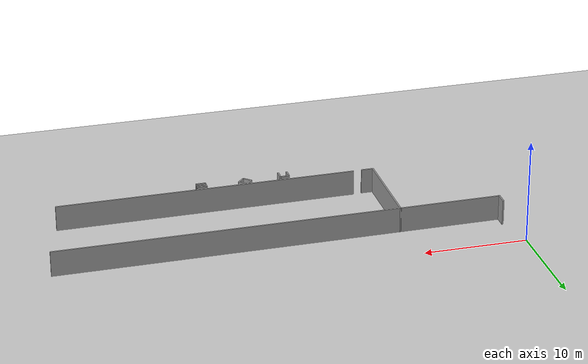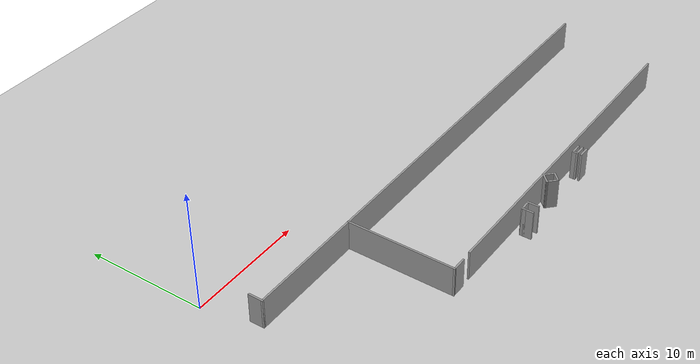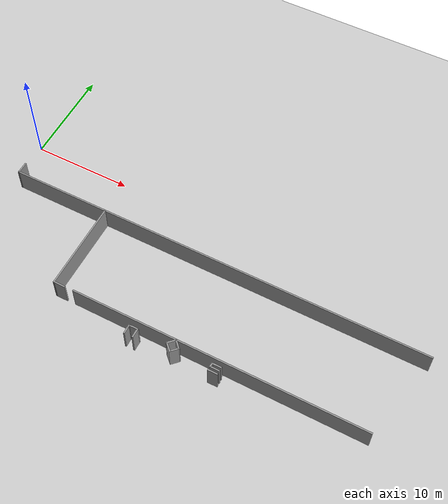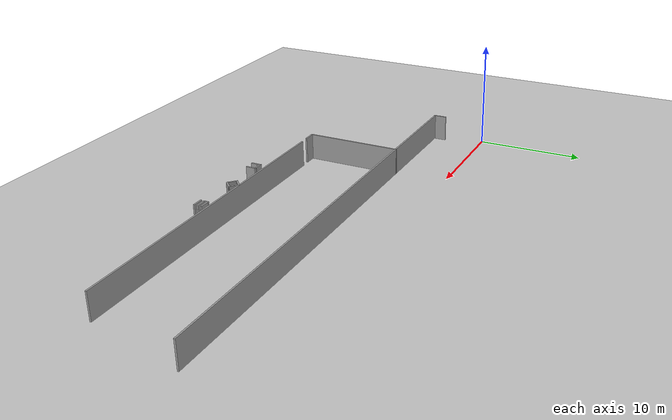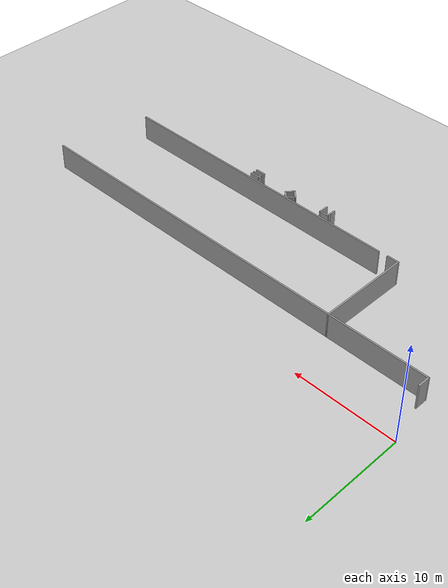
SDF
<sdf version="1.6">
 <world name="default">
  <model name="ground_plane">
   <static>1</static>
   <link name="link">
    <collision name="collision">
     <geometry><plane><normal>0 0 1</normal><size>300 300</size></plane></geometry>
     <surface>
      <contact><collide_bitmask>65535</collide_bitmask></contact>
      <friction><ode><mu>100</mu><mu2>50</mu2></ode></friction>
     </surface>
    </collision>
    <visual name="visual">
     <cast_shadows>0</cast_shadows>
     <geometry><plane><normal>0 0 1</normal><size>300 300</size></plane></geometry>
     <material>
      <script><uri>file://media/materials/scripts/gazebo.material</uri><name>Gazebo/Grey</name></script>
     </material>
    </visual>
   </link>
  </model>
  <model name="NIK">
   <pose>-0.005548 -3.7937 0 0 -0 0</pose>
   <link name="Wall_100">
    <collision name="Wall_100_Collision">
     <geometry><box><size>9.04424 0.15 2.5</size></box></geometry>
     <pose>0 0 1.25 0 -0 0</pose>
    </collision>
    <visual name="Wall_100_Visual">
     <pose>0 0 1.25 0 -0 0</pose>
     <geometry><box><size>9.04424 0.15 2.5</size></box></geometry>
     <material>
      <script><uri>file://media/materials/scripts/gazebo.material</uri><name>Gazebo/Grey</name></script>
      <ambient>1 1 1 1</ambient>
     </material>
     <meta><layer>0</layer></meta>
    </visual>
    <pose>10.8835 -5.474 0 0 -0 -1.571</pose>
   </link>
   <link name="Wall_109">
    <collision name="Wall_109_Collision">
     <geometry><box><size>33.25 0.15 2.5</size></box></geometry>
     <pose>0 0 1.25 0 -0 0</pose>
    </collision>
    <visual name="Wall_109_Visual">
     <pose>0 0 1.25 0 -0 0</pose>
     <geometry><box><size>33.25 0.15 2.5</size></box></geometry>
     <material>
      <script><uri>file://media/materials/scripts/gazebo.material</uri><name>Gazebo/Grey</name></script>
      <ambient>1 1 1 1</ambient>
     </material>
     <meta><layer>0</layer></meta>
    </visual>
    <pose>27.4344 -1.02688 0 0 -0 0</pose>
   </link>
   <link name="Wall_282">
    <collision name="Wall_282_Collision">
     <geometry><box><size>0.75 0.15 2.5</size></box></geometry>
     <pose>0 0 1.25 0 -0 0</pose>
    </collision>
    <visual name="Wall_282_Visual">
     <pose>0 0 1.25 0 -0 0</pose>
     <geometry><box><size>0.75 0.15 2.5</size></box></geometry>
     <material>
      <script><uri>file://media/materials/scripts/gazebo.material</uri><name>Gazebo/Grey</name></script>
      <ambient>1 1 1 1</ambient>
     </material>
     <meta><layer>0</layer></meta>
    </visual>
    <pose>19.1815 -11.1088 0 0 -0 -1.5708</pose>
   </link>
   <link name="Wall_284">
    <collision name="Wall_284_Collision">
     <geometry><box><size>1 0.15 2.5</size></box></geometry>
     <pose>0 0 1.25 0 -0 0</pose>
    </collision>
    <visual name="Wall_284_Visual">
     <pose>0 0 1.25 0 -0 0</pose>
     <geometry><box><size>1 0.15 2.5</size></box></geometry>
     <material>
      <script><uri>file://media/materials/scripts/gazebo.material</uri><name>Gazebo/Grey</name></script>
      <ambient>1 1 1 1</ambient>
     </material>
     <meta><layer>0</layer></meta>
    </visual>
    <pose>20.0315 -10.9838 0 0 -0 1.5708</pose>
   </link>
   <link name="Wall_285">
    <collision name="Wall_285_Collision">
     <geometry><box><size>1 0.15 2.5</size></box></geometry>
     <pose>0 0 1.25 0 -0 0</pose>
    </collision>
    <visual name="Wall_285_Visual">
     <pose>0 0 1.25 0 -0 0</pose>
     <geometry><box><size>1 0.15 2.5</size></box></geometry>
     <material>
      <script><uri>file://media/materials/scripts/gazebo.material</uri><name>Gazebo/Grey</name></script>
      <ambient>1 1 1 1</ambient>
     </material>
     <meta><layer>0</layer></meta>
    </visual>
    <pose>19.6065 -10.5588 0 0 -0 3.14159</pose>
   </link>
   <link name="Wall_286">
    <collision name="Wall_286_Collision">
     <geometry><box><size>0.4 0.15 2.5</size></box></geometry>
     <pose>0 0 1.25 0 -0 0</pose>
    </collision>
    <visual name="Wall_286_Visual">
     <pose>0 0 1.25 0 -0 0</pose>
     <geometry><box><size>0.4 0.15 2.5</size></box></geometry>
     <material>
      <script><uri>file://media/materials/scripts/gazebo.material</uri><name>Gazebo/Grey</name></script>
      <ambient>1 1 1 1</ambient>
     </material>
     <meta><layer>0</layer></meta>
    </visual>
    <pose>19.1815 -10.6838 0 0 -0 -1.5708</pose>
   </link>
   <link name="Wall_432">
    <collision name="Wall_432_Collision">
     <geometry><box><size>1 0.15 2.5</size></box></geometry>
     <pose>0 0 1.25 0 -0 0</pose>
    </collision>
    <visual name="Wall_432_Visual">
     <pose>0 0 1.25 0 -0 0</pose>
     <geometry><box><size>1 0.15 2.5</size></box></geometry>
     <material>
      <script><uri>file://media/materials/scripts/gazebo.material</uri><name>Gazebo/Grey</name></script>
      <ambient>1 1 1 1</ambient>
     </material>
     <meta><layer>0</layer></meta>
    </visual>
    <pose>27.8113 -11.1156 0 0 -0 0</pose>
   </link>
   <link name="Wall_434">
    <collision name="Wall_434_Collision">
     <geometry><box><size>1 0.15 2.5</size></box></geometry>
     <pose>0 0 1.25 0 -0 0</pose>
    </collision>
    <visual name="Wall_434_Visual">
     <pose>0 0 1.25 0 -0 0</pose>
     <geometry><box><size>1 0.15 2.5</size></box></geometry>
     <material>
      <script><uri>file://media/materials/scripts/gazebo.material</uri><name>Gazebo/Grey</name></script>
      <ambient>1 1 1 1</ambient>
     </material>
     <meta><layer>0</layer></meta>
    </visual>
    <pose>27.8113 -10.7656 0 0 -0 3.14159</pose>
   </link>
   <link name="Wall_435">
    <collision name="Wall_435_Collision">
     <geometry><box><size>0.5 0.15 2.5</size></box></geometry>
     <pose>0 0 1.25 0 -0 0</pose>
    </collision>
    <visual name="Wall_435_Visual">
     <pose>0 0 1.25 0 -0 0</pose>
     <geometry><box><size>0.5 0.15 2.5</size></box></geometry>
     <material>
      <script><uri>file://media/materials/scripts/gazebo.material</uri><name>Gazebo/Grey</name></script>
      <ambient>1 1 1 1</ambient>
     </material>
     <meta><layer>0</layer></meta>
    </visual>
    <pose>27.3863 -10.5906 0 0 -0 1.5708</pose>
   </link>
   <link name="Wall_436">
    <collision name="Wall_436_Collision">
     <geometry><box><size>1 0.15 2.5</size></box></geometry>
     <pose>0 0 1.25 0 -0 0</pose>
    </collision>
    <visual name="Wall_436_Visual">
     <pose>0 0 1.25 0 -0 0</pose>
     <geometry><box><size>1 0.15 2.5</size></box></geometry>
     <material>
      <script><uri>file://media/materials/scripts/gazebo.material</uri><name>Gazebo/Grey</name></script>
      <ambient>1 1 1 1</ambient>
     </material>
     <meta><layer>0</layer></meta>
    </visual>
    <pose>27.8113 -10.4156 0 0 -0 0</pose>
   </link>
   <link name="Wall_451">
    <collision name="Wall_451_Collision">
     <geometry><box><size>1 0.15 2.5</size></box></geometry>
     <pose>0 0 1.25 0 -0 0</pose>
    </collision>
    <visual name="Wall_451_Visual">
     <pose>0 0 1.25 0 -0 0</pose>
     <geometry><box><size>1 0.15 2.5</size></box></geometry>
     <material>
      <script><uri>file://media/materials/scripts/gazebo.material</uri><name>Gazebo/Grey</name></script>
      <ambient>1 1 1 1</ambient>
     </material>
     <meta><layer>0</layer></meta>
    </visual>
    <pose>23.8617 -10.2235 0 0 -0 -0.785398</pose>
   </link>
   <link name="Wall_452">
    <collision name="Wall_452_Collision">
     <geometry><box><size>0.987316 0.15 2.5</size></box></geometry>
     <pose>0 0 1.25 0 -0 0</pose>
    </collision>
    <visual name="Wall_452_Visual">
     <pose>0 0 1.25 0 -0 0</pose>
     <geometry><box><size>0.987316 0.15 2.5</size></box></geometry>
     <material>
      <script><uri>file://media/materials/scripts/gazebo.material</uri><name>Gazebo/Grey</name></script>
      <ambient>1 1 1 1</ambient>
     </material>
     <meta><layer>0</layer></meta>
    </visual>
    <pose>23.8708 -10.8245 0 0 -0 -2.34093</pose>
   </link>
   <link name="Wall_476">
    <collision name="Wall_476_Collision">
     <geometry><box><size>1.01288 0.15 2.5</size></box></geometry>
     <pose>0 0 1.25 0 -0 0</pose>
    </collision>
    <visual name="Wall_476_Visual">
     <pose>0 0 1.25 0 -0 0</pose>
     <geometry><box><size>1.01288 0.15 2.5</size></box></geometry>
     <material>
      <script><uri>file://media/materials/scripts/gazebo.material</uri><name>Gazebo/Grey</name></script>
      <ambient>1 1 1 1</ambient>
     </material>
     <meta><layer>0</layer></meta>
    </visual>
    <pose>23.2697 -10.8245 0 0 -0 2.37101</pose>
   </link>
   <link name="Wall_477">
    <collision name="Wall_477_Collision">
     <geometry><box><size>1 0.15 2.5</size></box></geometry>
     <pose>0 0 1.25 0 -0 0</pose>
    </collision>
    <visual name="Wall_477_Visual">
     <pose>0 0 1.25 0 -0 0</pose>
     <geometry><box><size>1 0.15 2.5</size></box></geometry>
     <material>
      <script><uri>file://media/materials/scripts/gazebo.material</uri><name>Gazebo/Grey</name></script>
      <ambient>1 1 1 1</ambient>
     </material>
     <meta><layer>0</layer></meta>
    </visual>
    <pose>23.2607 -10.2235 0 0 -0 0.785398</pose>
   </link>
   <link name="Wall_563">
    <collision name="Wall_563_Collision">
     <geometry><box><size>1.25 0.15 2.5</size></box></geometry>
     <pose>0 0 1.25 0 -0 0</pose>
    </collision>
    <visual name="Wall_563_Visual">
     <pose>0 0 1.25 0 -0 0</pose>
     <geometry><box><size>1.25 0.15 2.5</size></box></geometry>
     <material>
      <script><uri>file://media/materials/scripts/gazebo.material</uri><name>Gazebo/Grey</name></script>
      <ambient>1 1 1 1</ambient>
     </material>
     <meta><layer>0</layer></meta>
    </visual>
    <pose>1.03455 -0.477303 0 0 -0 1.5708</pose>
   </link>
   <link name="Wall_577">
    <collision name="Wall_577_Collision">
     <geometry><box><size>1.25 0.15 2.5</size></box></geometry>
     <pose>0 0 1.25 0 -0 0</pose>
    </collision>
    <visual name="Wall_577_Visual">
     <pose>0 0 1.25 0 -0 0</pose>
     <geometry><box><size>1.25 0.15 2.5</size></box></geometry>
     <material>
      <script><uri>file://media/materials/scripts/gazebo.material</uri><name>Gazebo/Grey</name></script>
      <ambient>1 1 1 1</ambient>
     </material>
     <meta><layer>0</layer></meta>
    </visual>
    <pose>11.4325 -9.92112 0 0 -0 0</pose>
   </link>
   <link name="Wall_586">
    <collision name="Wall_586_Collision">
     <geometry><box><size>29.25 0.15 2.5</size></box></geometry>
     <pose>0 0 1.25 0 -0 0</pose>
    </collision>
    <visual name="Wall_586_Visual">
     <pose>0 0 1.25 0 -0 0</pose>
     <geometry><box><size>29.25 0.15 2.5</size></box></geometry>
     <material>
      <script><uri>file://media/materials/scripts/gazebo.material</uri><name>Gazebo/Grey</name></script>
      <ambient>1 1 1 1</ambient>
     </material>
     <meta><layer>0</layer></meta>
    </visual>
    <pose>27.4844 -9.87688 0 0 -0 3.14159</pose>
   </link>
   <link name="Wall_99">
    <collision name="Wall_99_Collision">
     <geometry><box><size>10 0.15 2.5</size></box></geometry>
     <pose>0 0 1.25 0 -0 0</pose>
    </collision>
    <visual name="Wall_99_Visual">
     <pose>0 0 1.25 0 -0 0</pose>
     <geometry><box><size>10 0.15 2.5</size></box></geometry>
     <material>
      <script><uri>file://media/materials/scripts/gazebo.material</uri><name>Gazebo/Grey</name></script>
      <ambient>1 1 1 1</ambient>
     </material>
     <meta><layer>0</layer></meta>
    </visual>
    <pose>5.95946 -1.02709 0 0 -0 4.3e-05</pose>
   </link>
   <static>1</static>
  </model>
 </world>
</sdf>
